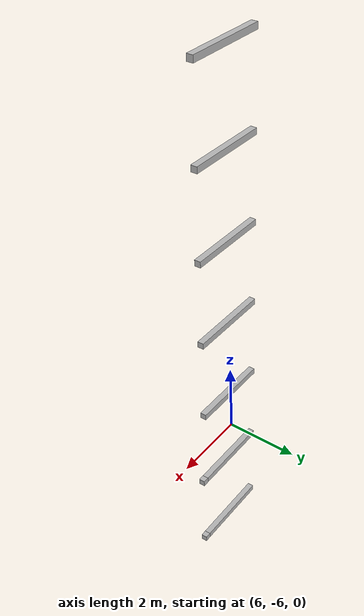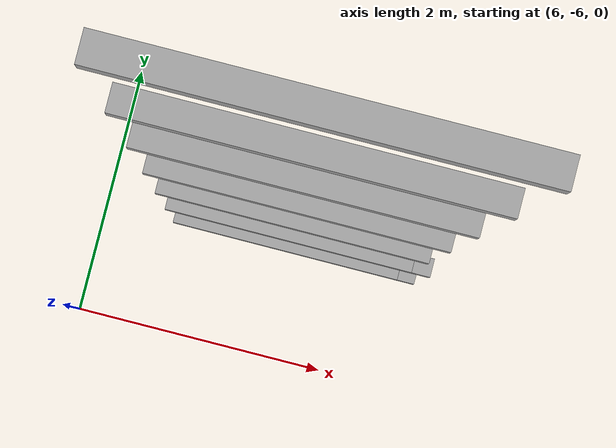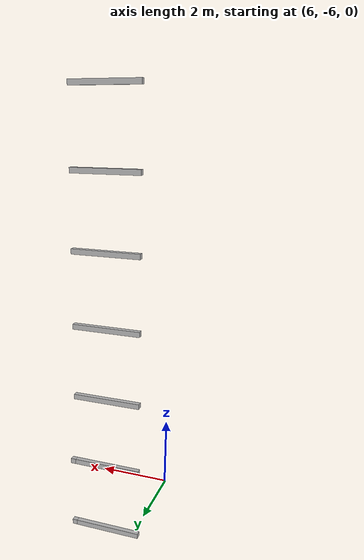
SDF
<sdf version="1.7">
 <world name="default">
  <model name="orthogonal_747_2.000.15_TS">
   <static>1</static>
   <link name="x_link_0_0_6">
    <inertial>
     <mass>1</mass>
     <inertia>
      <ixx>0.166667</ixx>
      <ixy>0</ixy>
      <ixz>0</ixz>
      <iyy>0.166667</iyy>
      <iyz>0</iyz>
      <izz>0.166667</izz>
     </inertia>
    </inertial>
    <pose>13.975 0 1.075 0 -0 0</pose>
    <visual name="visual_0">
     <laser_retro>127</laser_retro>
     <geometry><box><size>2 1e-06 0.15</size></box></geometry>
     <material>
      <script><name>Gazebo/Grey</name><uri>file://media/materials/scripts/gazebo.material</uri></script>
      <shader type="pixel"><normal_map>__default__</normal_map></shader>
      <ambient>0.678 0.498 0.659 1</ambient>
      <diffuse>0.7 0.7 0.7 1</diffuse>
      <specular>0.01 0.01 0.01 1</specular>
      <emissive>0 0 0 1</emissive>
     </material>
     <pose>0 -0.075 0 0 -0 0</pose>
     <transparency>1</transparency>
    </visual>
    <visual name="visual_1">
     <laser_retro>128</laser_retro>
     <geometry><box><size>2 1e-06 0.15</size></box></geometry>
     <material>
      <script><name>Gazebo/Grey</name><uri>file://media/materials/scripts/gazebo.material</uri></script>
      <shader type="pixel"><normal_map>__default__</normal_map></shader>
      <ambient>0.447 0.624 0.812 1</ambient>
      <diffuse>0.7 0.7 0.7 1</diffuse>
      <specular>0.01 0.01 0.01 1</specular>
      <emissive>0 0 0 1</emissive>
     </material>
     <pose>0 0.075 0 0 -0 0</pose>
     <transparency>1</transparency>
    </visual>
    <visual name="visual_2">
     <laser_retro>129</laser_retro>
     <geometry><box><size>2 0.15 1e-06</size></box></geometry>
     <material>
      <script><name>Gazebo/Grey</name><uri>file://media/materials/scripts/gazebo.material</uri></script>
      <shader type="pixel"><normal_map>__default__</normal_map></shader>
      <ambient>0.988 0.686 0.243 1</ambient>
      <diffuse>0.7 0.7 0.7 1</diffuse>
      <specular>0.01 0.01 0.01 1</specular>
      <emissive>0 0 0 1</emissive>
     </material>
     <pose>0 0 -0.075 0 -0 0</pose>
     <transparency>1</transparency>
    </visual>
    <visual name="visual_3">
     <laser_retro>130</laser_retro>
     <geometry><box><size>1e-06 0.15 0.15</size></box></geometry>
     <material>
      <script><name>Gazebo/Grey</name><uri>file://media/materials/scripts/gazebo.material</uri></script>
      <shader type="pixel"><normal_map>__default__</normal_map></shader>
      <ambient>0.988 0.914 0.31 1</ambient>
      <diffuse>0.7 0.7 0.7 1</diffuse>
      <specular>0.01 0.01 0.01 1</specular>
      <emissive>0 0 0 1</emissive>
     </material>
     <pose>1 0 0 0 -0 0</pose>
     <transparency>1</transparency>
    </visual>
    <visual name="visual_4">
     <laser_retro>131</laser_retro>
     <geometry><box><size>2 0.15 1e-06</size></box></geometry>
     <material>
      <script><name>Gazebo/Grey</name><uri>file://media/materials/scripts/gazebo.material</uri></script>
      <shader type="pixel"><normal_map>__default__</normal_map></shader>
      <ambient>0.937 0.161 0.161 1</ambient>
      <diffuse>0.7 0.7 0.7 1</diffuse>
      <specular>0.01 0.01 0.01 1</specular>
      <emissive>0 0 0 1</emissive>
     </material>
     <pose>0 0 0.075 0 -0 0</pose>
     <transparency>1</transparency>
    </visual>
    <visual name="visual_5">
     <laser_retro>132</laser_retro>
     <geometry><box><size>1e-06 0.15 0.15</size></box></geometry>
     <material>
      <script><name>Gazebo/Grey</name><uri>file://media/materials/scripts/gazebo.material</uri></script>
      <shader type="pixel"><normal_map>__default__</normal_map></shader>
      <ambient>0.541 0.886 0.204 1</ambient>
      <diffuse>0.7 0.7 0.7 1</diffuse>
      <specular>0.01 0.01 0.01 1</specular>
      <emissive>0 0 0 1</emissive>
     </material>
     <pose>-1 0 0 0 -0 0</pose>
     <transparency>1</transparency>
    </visual>
    <visual name="visual_texture">
     <geometry><box><size>1.9998 0.149985 0.149985</size></box></geometry>
     <material>
      <script>
       <uri>model://BASE_MODELS/simple_block_v2_textured/materials/scripts</uri>
       <uri>model://BASE_MODELS/simple_block_v2_textured/materials/textures</uri>
       <name>metal</name>
      </script>
     </material>
     <laser_retro>133</laser_retro>
    </visual>
    <collision name="collision">
     <geometry><box><size>2 0.15 0.15</size></box></geometry>
     <surface>
      <friction>
       <ode><mu>1</mu><mu2>1</mu2><fdir1>0 0 0</fdir1><slip1>0</slip1><slip2>0</slip2></ode>
       <torsional>
        <coefficient>1</coefficient>
        <patch_radius>0</patch_radius>
        <surface_radius>0</surface_radius>
        <use_patch_radius>1</use_patch_radius>
        <ode><slip>0</slip></ode>
       </torsional>
      </friction>
      <bounce><restitution_coefficient>0</restitution_coefficient><threshold>1e+06</threshold></bounce>
      <contact>
       <collide_without_contact>0</collide_without_contact>
       <collide_without_contact_bitmask>1</collide_without_contact_bitmask>
       <collide_bitmask>1</collide_bitmask>
       <ode>
        <soft_cfm>0</soft_cfm>
        <soft_erp>0.2</soft_erp>
        <kp>1e+13</kp>
        <kd>1</kd>
        <max_vel>0.01</max_vel>
        <min_depth>0</min_depth>
       </ode>
       <bullet>
        <split_impulse>1</split_impulse>
        <split_impulse_penetration_threshold>-0.01</split_impulse_penetration_threshold>
        <soft_cfm>0</soft_cfm>
        <soft_erp>0.2</soft_erp>
        <kp>1e+13</kp>
        <kd>1</kd>
       </bullet>
      </contact>
     </surface>
    </collision>
   </link>
   <link name="u_link_0_0_7">
    <inertial>
     <mass>1</mass>
     <inertia>
      <ixx>0.166667</ixx>
      <ixy>0</ixy>
      <ixz>0</ixz>
      <iyy>0.166667</iyy>
      <iyz>0</iyz>
      <izz>0.166667</izz>
     </inertia>
    </inertial>
    <pose>15.05 0 1.075 0 -0 0</pose>
    <visual name="visual_0">
     <laser_retro>155</laser_retro>
     <geometry><box><size>0.15 1e-06 0.15</size></box></geometry>
     <material>
      <script><name>Gazebo/Grey</name><uri>file://media/materials/scripts/gazebo.material</uri></script>
      <shader type="pixel"><normal_map>__default__</normal_map></shader>
      <ambient>0.678 0.498 0.659 1</ambient>
      <diffuse>0.7 0.7 0.7 1</diffuse>
      <specular>0.01 0.01 0.01 1</specular>
      <emissive>0 0 0 1</emissive>
     </material>
     <pose>0 -0.075 0 0 -0 0</pose>
     <transparency>1</transparency>
    </visual>
    <visual name="visual_1">
     <laser_retro>156</laser_retro>
     <geometry><box><size>0.15 1e-06 0.15</size></box></geometry>
     <material>
      <script><name>Gazebo/Grey</name><uri>file://media/materials/scripts/gazebo.material</uri></script>
      <shader type="pixel"><normal_map>__default__</normal_map></shader>
      <ambient>0.447 0.624 0.812 1</ambient>
      <diffuse>0.7 0.7 0.7 1</diffuse>
      <specular>0.01 0.01 0.01 1</specular>
      <emissive>0 0 0 1</emissive>
     </material>
     <pose>0 0.075 0 0 -0 0</pose>
     <transparency>1</transparency>
    </visual>
    <visual name="visual_2">
     <laser_retro>157</laser_retro>
     <geometry><box><size>0.15 0.15 1e-06</size></box></geometry>
     <material>
      <script><name>Gazebo/Grey</name><uri>file://media/materials/scripts/gazebo.material</uri></script>
      <shader type="pixel"><normal_map>__default__</normal_map></shader>
      <ambient>0.988 0.686 0.243 1</ambient>
      <diffuse>0.7 0.7 0.7 1</diffuse>
      <specular>0.01 0.01 0.01 1</specular>
      <emissive>0 0 0 1</emissive>
     </material>
     <pose>0 0 -0.075 0 -0 0</pose>
     <transparency>1</transparency>
    </visual>
    <visual name="visual_3">
     <laser_retro>158</laser_retro>
     <geometry><box><size>1e-06 0.15 0.15</size></box></geometry>
     <material>
      <script><name>Gazebo/Grey</name><uri>file://media/materials/scripts/gazebo.material</uri></script>
      <shader type="pixel"><normal_map>__default__</normal_map></shader>
      <ambient>0.988 0.914 0.31 1</ambient>
      <diffuse>0.7 0.7 0.7 1</diffuse>
      <specular>0.01 0.01 0.01 1</specular>
      <emissive>0 0 0 1</emissive>
     </material>
     <pose>0.075 0 0 0 -0 0</pose>
     <transparency>1</transparency>
    </visual>
    <visual name="visual_4">
     <laser_retro>159</laser_retro>
     <geometry><box><size>0.15 0.15 1e-06</size></box></geometry>
     <material>
      <script><name>Gazebo/Grey</name><uri>file://media/materials/scripts/gazebo.material</uri></script>
      <shader type="pixel"><normal_map>__default__</normal_map></shader>
      <ambient>0.937 0.161 0.161 1</ambient>
      <diffuse>0.7 0.7 0.7 1</diffuse>
      <specular>0.01 0.01 0.01 1</specular>
      <emissive>0 0 0 1</emissive>
     </material>
     <pose>0 0 0.075 0 -0 0</pose>
     <transparency>1</transparency>
    </visual>
    <visual name="visual_5">
     <laser_retro>160</laser_retro>
     <geometry><box><size>1e-06 0.15 0.15</size></box></geometry>
     <material>
      <script><name>Gazebo/Grey</name><uri>file://media/materials/scripts/gazebo.material</uri></script>
      <shader type="pixel"><normal_map>__default__</normal_map></shader>
      <ambient>0.541 0.886 0.204 1</ambient>
      <diffuse>0.7 0.7 0.7 1</diffuse>
      <specular>0.01 0.01 0.01 1</specular>
      <emissive>0 0 0 1</emissive>
     </material>
     <pose>-0.075 0 0 0 -0 0</pose>
     <transparency>1</transparency>
    </visual>
    <visual name="visual_texture">
     <geometry><box><size>0.149985 0.149985 0.149985</size></box></geometry>
     <material>
      <script>
       <uri>model://BASE_MODELS/simple_block_v2_textured/materials/scripts</uri>
       <uri>model://BASE_MODELS/simple_block_v2_textured/materials/textures</uri>
       <name>metal</name>
      </script>
     </material>
     <laser_retro>161</laser_retro>
    </visual>
    <collision name="collision">
     <geometry><box><size>0.15 0.15 0.15</size></box></geometry>
     <surface>
      <friction>
       <ode><mu>1</mu><mu2>1</mu2><fdir1>0 0 0</fdir1><slip1>0</slip1><slip2>0</slip2></ode>
       <torsional>
        <coefficient>1</coefficient>
        <patch_radius>0</patch_radius>
        <surface_radius>0</surface_radius>
        <use_patch_radius>1</use_patch_radius>
        <ode><slip>0</slip></ode>
       </torsional>
      </friction>
      <bounce><restitution_coefficient>0</restitution_coefficient><threshold>1e+06</threshold></bounce>
      <contact>
       <collide_without_contact>0</collide_without_contact>
       <collide_without_contact_bitmask>1</collide_without_contact_bitmask>
       <collide_bitmask>1</collide_bitmask>
       <ode>
        <soft_cfm>0</soft_cfm>
        <soft_erp>0.2</soft_erp>
        <kp>1e+13</kp>
        <kd>1</kd>
        <max_vel>0.01</max_vel>
        <min_depth>0</min_depth>
       </ode>
       <bullet>
        <split_impulse>1</split_impulse>
        <split_impulse_penetration_threshold>-0.01</split_impulse_penetration_threshold>
        <soft_cfm>0</soft_cfm>
        <soft_erp>0.2</soft_erp>
        <kp>1e+13</kp>
        <kd>1</kd>
       </bullet>
      </contact>
     </surface>
    </collision>
   </link>
   <link name="x_link_1_0_6">
    <inertial>
     <mass>1</mass>
     <inertia>
      <ixx>0.166667</ixx>
      <ixy>0</ixy>
      <ixz>0</ixz>
      <iyy>0.166667</iyy>
      <iyz>0</iyz>
      <izz>0.166667</izz>
     </inertia>
    </inertial>
    <pose>13.975 0 3.225 0 -0 0</pose>
    <visual name="visual_0">
     <laser_retro>918</laser_retro>
     <geometry><box><size>2 1e-06 0.15</size></box></geometry>
     <material>
      <script><name>Gazebo/Grey</name><uri>file://media/materials/scripts/gazebo.material</uri></script>
      <shader type="pixel"><normal_map>__default__</normal_map></shader>
      <ambient>0.678 0.498 0.659 1</ambient>
      <diffuse>0.7 0.7 0.7 1</diffuse>
      <specular>0.01 0.01 0.01 1</specular>
      <emissive>0 0 0 1</emissive>
     </material>
     <pose>0 -0.075 0 0 -0 0</pose>
     <transparency>1</transparency>
    </visual>
    <visual name="visual_1">
     <laser_retro>919</laser_retro>
     <geometry><box><size>2 1e-06 0.15</size></box></geometry>
     <material>
      <script><name>Gazebo/Grey</name><uri>file://media/materials/scripts/gazebo.material</uri></script>
      <shader type="pixel"><normal_map>__default__</normal_map></shader>
      <ambient>0.447 0.624 0.812 1</ambient>
      <diffuse>0.7 0.7 0.7 1</diffuse>
      <specular>0.01 0.01 0.01 1</specular>
      <emissive>0 0 0 1</emissive>
     </material>
     <pose>0 0.075 0 0 -0 0</pose>
     <transparency>1</transparency>
    </visual>
    <visual name="visual_2">
     <laser_retro>920</laser_retro>
     <geometry><box><size>2 0.15 1e-06</size></box></geometry>
     <material>
      <script><name>Gazebo/Grey</name><uri>file://media/materials/scripts/gazebo.material</uri></script>
      <shader type="pixel"><normal_map>__default__</normal_map></shader>
      <ambient>0.988 0.686 0.243 1</ambient>
      <diffuse>0.7 0.7 0.7 1</diffuse>
      <specular>0.01 0.01 0.01 1</specular>
      <emissive>0 0 0 1</emissive>
     </material>
     <pose>0 0 -0.075 0 -0 0</pose>
     <transparency>1</transparency>
    </visual>
    <visual name="visual_3">
     <laser_retro>921</laser_retro>
     <geometry><box><size>1e-06 0.15 0.15</size></box></geometry>
     <material>
      <script><name>Gazebo/Grey</name><uri>file://media/materials/scripts/gazebo.material</uri></script>
      <shader type="pixel"><normal_map>__default__</normal_map></shader>
      <ambient>0.988 0.914 0.31 1</ambient>
      <diffuse>0.7 0.7 0.7 1</diffuse>
      <specular>0.01 0.01 0.01 1</specular>
      <emissive>0 0 0 1</emissive>
     </material>
     <pose>1 0 0 0 -0 0</pose>
     <transparency>1</transparency>
    </visual>
    <visual name="visual_4">
     <laser_retro>922</laser_retro>
     <geometry><box><size>2 0.15 1e-06</size></box></geometry>
     <material>
      <script><name>Gazebo/Grey</name><uri>file://media/materials/scripts/gazebo.material</uri></script>
      <shader type="pixel"><normal_map>__default__</normal_map></shader>
      <ambient>0.937 0.161 0.161 1</ambient>
      <diffuse>0.7 0.7 0.7 1</diffuse>
      <specular>0.01 0.01 0.01 1</specular>
      <emissive>0 0 0 1</emissive>
     </material>
     <pose>0 0 0.075 0 -0 0</pose>
     <transparency>1</transparency>
    </visual>
    <visual name="visual_5">
     <laser_retro>923</laser_retro>
     <geometry><box><size>1e-06 0.15 0.15</size></box></geometry>
     <material>
      <script><name>Gazebo/Grey</name><uri>file://media/materials/scripts/gazebo.material</uri></script>
      <shader type="pixel"><normal_map>__default__</normal_map></shader>
      <ambient>0.541 0.886 0.204 1</ambient>
      <diffuse>0.7 0.7 0.7 1</diffuse>
      <specular>0.01 0.01 0.01 1</specular>
      <emissive>0 0 0 1</emissive>
     </material>
     <pose>-1 0 0 0 -0 0</pose>
     <transparency>1</transparency>
    </visual>
    <visual name="visual_texture">
     <geometry><box><size>1.9998 0.149985 0.149985</size></box></geometry>
     <material>
      <script>
       <uri>model://BASE_MODELS/simple_block_v2_textured/materials/scripts</uri>
       <uri>model://BASE_MODELS/simple_block_v2_textured/materials/textures</uri>
       <name>metal</name>
      </script>
     </material>
     <laser_retro>924</laser_retro>
    </visual>
    <collision name="collision">
     <geometry><box><size>2 0.15 0.15</size></box></geometry>
     <surface>
      <friction>
       <ode><mu>1</mu><mu2>1</mu2><fdir1>0 0 0</fdir1><slip1>0</slip1><slip2>0</slip2></ode>
       <torsional>
        <coefficient>1</coefficient>
        <patch_radius>0</patch_radius>
        <surface_radius>0</surface_radius>
        <use_patch_radius>1</use_patch_radius>
        <ode><slip>0</slip></ode>
       </torsional>
      </friction>
      <bounce><restitution_coefficient>0</restitution_coefficient><threshold>1e+06</threshold></bounce>
      <contact>
       <collide_without_contact>0</collide_without_contact>
       <collide_without_contact_bitmask>1</collide_without_contact_bitmask>
       <collide_bitmask>1</collide_bitmask>
       <ode>
        <soft_cfm>0</soft_cfm>
        <soft_erp>0.2</soft_erp>
        <kp>1e+13</kp>
        <kd>1</kd>
        <max_vel>0.01</max_vel>
        <min_depth>0</min_depth>
       </ode>
       <bullet>
        <split_impulse>1</split_impulse>
        <split_impulse_penetration_threshold>-0.01</split_impulse_penetration_threshold>
        <soft_cfm>0</soft_cfm>
        <soft_erp>0.2</soft_erp>
        <kp>1e+13</kp>
        <kd>1</kd>
       </bullet>
      </contact>
     </surface>
    </collision>
   </link>
   <link name="u_link_1_0_7">
    <inertial>
     <mass>1</mass>
     <inertia>
      <ixx>0.166667</ixx>
      <ixy>0</ixy>
      <ixz>0</ixz>
      <iyy>0.166667</iyy>
      <iyz>0</iyz>
      <izz>0.166667</izz>
     </inertia>
    </inertial>
    <pose>15.05 0 3.225 0 -0 0</pose>
    <visual name="visual_0">
     <laser_retro>953</laser_retro>
     <geometry><box><size>0.15 1e-06 0.15</size></box></geometry>
     <material>
      <script><name>Gazebo/Grey</name><uri>file://media/materials/scripts/gazebo.material</uri></script>
      <shader type="pixel"><normal_map>__default__</normal_map></shader>
      <ambient>0.678 0.498 0.659 1</ambient>
      <diffuse>0.7 0.7 0.7 1</diffuse>
      <specular>0.01 0.01 0.01 1</specular>
      <emissive>0 0 0 1</emissive>
     </material>
     <pose>0 -0.075 0 0 -0 0</pose>
     <transparency>1</transparency>
    </visual>
    <visual name="visual_1">
     <laser_retro>954</laser_retro>
     <geometry><box><size>0.15 1e-06 0.15</size></box></geometry>
     <material>
      <script><name>Gazebo/Grey</name><uri>file://media/materials/scripts/gazebo.material</uri></script>
      <shader type="pixel"><normal_map>__default__</normal_map></shader>
      <ambient>0.447 0.624 0.812 1</ambient>
      <diffuse>0.7 0.7 0.7 1</diffuse>
      <specular>0.01 0.01 0.01 1</specular>
      <emissive>0 0 0 1</emissive>
     </material>
     <pose>0 0.075 0 0 -0 0</pose>
     <transparency>1</transparency>
    </visual>
    <visual name="visual_2">
     <laser_retro>955</laser_retro>
     <geometry><box><size>0.15 0.15 1e-06</size></box></geometry>
     <material>
      <script><name>Gazebo/Grey</name><uri>file://media/materials/scripts/gazebo.material</uri></script>
      <shader type="pixel"><normal_map>__default__</normal_map></shader>
      <ambient>0.988 0.686 0.243 1</ambient>
      <diffuse>0.7 0.7 0.7 1</diffuse>
      <specular>0.01 0.01 0.01 1</specular>
      <emissive>0 0 0 1</emissive>
     </material>
     <pose>0 0 -0.075 0 -0 0</pose>
     <transparency>1</transparency>
    </visual>
    <visual name="visual_3">
     <laser_retro>956</laser_retro>
     <geometry><box><size>1e-06 0.15 0.15</size></box></geometry>
     <material>
      <script><name>Gazebo/Grey</name><uri>file://media/materials/scripts/gazebo.material</uri></script>
      <shader type="pixel"><normal_map>__default__</normal_map></shader>
      <ambient>0.988 0.914 0.31 1</ambient>
      <diffuse>0.7 0.7 0.7 1</diffuse>
      <specular>0.01 0.01 0.01 1</specular>
      <emissive>0 0 0 1</emissive>
     </material>
     <pose>0.075 0 0 0 -0 0</pose>
     <transparency>1</transparency>
    </visual>
    <visual name="visual_4">
     <laser_retro>957</laser_retro>
     <geometry><box><size>0.15 0.15 1e-06</size></box></geometry>
     <material>
      <script><name>Gazebo/Grey</name><uri>file://media/materials/scripts/gazebo.material</uri></script>
      <shader type="pixel"><normal_map>__default__</normal_map></shader>
      <ambient>0.937 0.161 0.161 1</ambient>
      <diffuse>0.7 0.7 0.7 1</diffuse>
      <specular>0.01 0.01 0.01 1</specular>
      <emissive>0 0 0 1</emissive>
     </material>
     <pose>0 0 0.075 0 -0 0</pose>
     <transparency>1</transparency>
    </visual>
    <visual name="visual_5">
     <laser_retro>958</laser_retro>
     <geometry><box><size>1e-06 0.15 0.15</size></box></geometry>
     <material>
      <script><name>Gazebo/Grey</name><uri>file://media/materials/scripts/gazebo.material</uri></script>
      <shader type="pixel"><normal_map>__default__</normal_map></shader>
      <ambient>0.541 0.886 0.204 1</ambient>
      <diffuse>0.7 0.7 0.7 1</diffuse>
      <specular>0.01 0.01 0.01 1</specular>
      <emissive>0 0 0 1</emissive>
     </material>
     <pose>-0.075 0 0 0 -0 0</pose>
     <transparency>1</transparency>
    </visual>
    <visual name="visual_texture">
     <geometry><box><size>0.149985 0.149985 0.149985</size></box></geometry>
     <material>
      <script>
       <uri>model://BASE_MODELS/simple_block_v2_textured/materials/scripts</uri>
       <uri>model://BASE_MODELS/simple_block_v2_textured/materials/textures</uri>
       <name>metal</name>
      </script>
     </material>
     <laser_retro>959</laser_retro>
    </visual>
    <collision name="collision">
     <geometry><box><size>0.15 0.15 0.15</size></box></geometry>
     <surface>
      <friction>
       <ode><mu>1</mu><mu2>1</mu2><fdir1>0 0 0</fdir1><slip1>0</slip1><slip2>0</slip2></ode>
       <torsional>
        <coefficient>1</coefficient>
        <patch_radius>0</patch_radius>
        <surface_radius>0</surface_radius>
        <use_patch_radius>1</use_patch_radius>
        <ode><slip>0</slip></ode>
       </torsional>
      </friction>
      <bounce><restitution_coefficient>0</restitution_coefficient><threshold>1e+06</threshold></bounce>
      <contact>
       <collide_without_contact>0</collide_without_contact>
       <collide_without_contact_bitmask>1</collide_without_contact_bitmask>
       <collide_bitmask>1</collide_bitmask>
       <ode>
        <soft_cfm>0</soft_cfm>
        <soft_erp>0.2</soft_erp>
        <kp>1e+13</kp>
        <kd>1</kd>
        <max_vel>0.01</max_vel>
        <min_depth>0</min_depth>
       </ode>
       <bullet>
        <split_impulse>1</split_impulse>
        <split_impulse_penetration_threshold>-0.01</split_impulse_penetration_threshold>
        <soft_cfm>0</soft_cfm>
        <soft_erp>0.2</soft_erp>
        <kp>1e+13</kp>
        <kd>1</kd>
       </bullet>
      </contact>
     </surface>
    </collision>
   </link>
   <link name="x_link_2_0_6">
    <inertial>
     <mass>1</mass>
     <inertia>
      <ixx>0.166667</ixx>
      <ixy>0</ixy>
      <ixz>0</ixz>
      <iyy>0.166667</iyy>
      <iyz>0</iyz>
      <izz>0.166667</izz>
     </inertia>
    </inertial>
    <pose>13.975 0 5.375 0 -0 0</pose>
    <visual name="visual_0">
     <laser_retro>1821</laser_retro>
     <geometry><box><size>2 1e-06 0.15</size></box></geometry>
     <material>
      <script><name>Gazebo/Grey</name><uri>file://media/materials/scripts/gazebo.material</uri></script>
      <shader type="pixel"><normal_map>__default__</normal_map></shader>
      <ambient>0.678 0.498 0.659 1</ambient>
      <diffuse>0.7 0.7 0.7 1</diffuse>
      <specular>0.01 0.01 0.01 1</specular>
      <emissive>0 0 0 1</emissive>
     </material>
     <pose>0 -0.075 0 0 -0 0</pose>
     <transparency>1</transparency>
    </visual>
    <visual name="visual_1">
     <laser_retro>1822</laser_retro>
     <geometry><box><size>2 1e-06 0.15</size></box></geometry>
     <material>
      <script><name>Gazebo/Grey</name><uri>file://media/materials/scripts/gazebo.material</uri></script>
      <shader type="pixel"><normal_map>__default__</normal_map></shader>
      <ambient>0.447 0.624 0.812 1</ambient>
      <diffuse>0.7 0.7 0.7 1</diffuse>
      <specular>0.01 0.01 0.01 1</specular>
      <emissive>0 0 0 1</emissive>
     </material>
     <pose>0 0.075 0 0 -0 0</pose>
     <transparency>1</transparency>
    </visual>
    <visual name="visual_2">
     <laser_retro>1823</laser_retro>
     <geometry><box><size>2 0.15 1e-06</size></box></geometry>
     <material>
      <script><name>Gazebo/Grey</name><uri>file://media/materials/scripts/gazebo.material</uri></script>
      <shader type="pixel"><normal_map>__default__</normal_map></shader>
      <ambient>0.988 0.686 0.243 1</ambient>
      <diffuse>0.7 0.7 0.7 1</diffuse>
      <specular>0.01 0.01 0.01 1</specular>
      <emissive>0 0 0 1</emissive>
     </material>
     <pose>0 0 -0.075 0 -0 0</pose>
     <transparency>1</transparency>
    </visual>
    <visual name="visual_3">
     <laser_retro>1824</laser_retro>
     <geometry><box><size>1e-06 0.15 0.15</size></box></geometry>
     <material>
      <script><name>Gazebo/Grey</name><uri>file://media/materials/scripts/gazebo.material</uri></script>
      <shader type="pixel"><normal_map>__default__</normal_map></shader>
      <ambient>0.988 0.914 0.31 1</ambient>
      <diffuse>0.7 0.7 0.7 1</diffuse>
      <specular>0.01 0.01 0.01 1</specular>
      <emissive>0 0 0 1</emissive>
     </material>
     <pose>1 0 0 0 -0 0</pose>
     <transparency>1</transparency>
    </visual>
    <visual name="visual_4">
     <laser_retro>1825</laser_retro>
     <geometry><box><size>2 0.15 1e-06</size></box></geometry>
     <material>
      <script><name>Gazebo/Grey</name><uri>file://media/materials/scripts/gazebo.material</uri></script>
      <shader type="pixel"><normal_map>__default__</normal_map></shader>
      <ambient>0.937 0.161 0.161 1</ambient>
      <diffuse>0.7 0.7 0.7 1</diffuse>
      <specular>0.01 0.01 0.01 1</specular>
      <emissive>0 0 0 1</emissive>
     </material>
     <pose>0 0 0.075 0 -0 0</pose>
     <transparency>1</transparency>
    </visual>
    <visual name="visual_5">
     <laser_retro>1826</laser_retro>
     <geometry><box><size>1e-06 0.15 0.15</size></box></geometry>
     <material>
      <script><name>Gazebo/Grey</name><uri>file://media/materials/scripts/gazebo.material</uri></script>
      <shader type="pixel"><normal_map>__default__</normal_map></shader>
      <ambient>0.541 0.886 0.204 1</ambient>
      <diffuse>0.7 0.7 0.7 1</diffuse>
      <specular>0.01 0.01 0.01 1</specular>
      <emissive>0 0 0 1</emissive>
     </material>
     <pose>-1 0 0 0 -0 0</pose>
     <transparency>1</transparency>
    </visual>
    <visual name="visual_texture">
     <geometry><box><size>1.9998 0.149985 0.149985</size></box></geometry>
     <material>
      <script>
       <uri>model://BASE_MODELS/simple_block_v2_textured/materials/scripts</uri>
       <uri>model://BASE_MODELS/simple_block_v2_textured/materials/textures</uri>
       <name>metal</name>
      </script>
     </material>
     <laser_retro>1827</laser_retro>
    </visual>
    <collision name="collision">
     <geometry><box><size>2 0.15 0.15</size></box></geometry>
     <surface>
      <friction>
       <ode><mu>1</mu><mu2>1</mu2><fdir1>0 0 0</fdir1><slip1>0</slip1><slip2>0</slip2></ode>
       <torsional>
        <coefficient>1</coefficient>
        <patch_radius>0</patch_radius>
        <surface_radius>0</surface_radius>
        <use_patch_radius>1</use_patch_radius>
        <ode><slip>0</slip></ode>
       </torsional>
      </friction>
      <bounce><restitution_coefficient>0</restitution_coefficient><threshold>1e+06</threshold></bounce>
      <contact>
       <collide_without_contact>0</collide_without_contact>
       <collide_without_contact_bitmask>1</collide_without_contact_bitmask>
       <collide_bitmask>1</collide_bitmask>
       <ode>
        <soft_cfm>0</soft_cfm>
        <soft_erp>0.2</soft_erp>
        <kp>1e+13</kp>
        <kd>1</kd>
        <max_vel>0.01</max_vel>
        <min_depth>0</min_depth>
       </ode>
       <bullet>
        <split_impulse>1</split_impulse>
        <split_impulse_penetration_threshold>-0.01</split_impulse_penetration_threshold>
        <soft_cfm>0</soft_cfm>
        <soft_erp>0.2</soft_erp>
        <kp>1e+13</kp>
        <kd>1</kd>
       </bullet>
      </contact>
     </surface>
    </collision>
   </link>
   <link name="x_link_3_0_6">
    <inertial>
     <mass>1</mass>
     <inertia>
      <ixx>0.166667</ixx>
      <ixy>0</ixy>
      <ixz>0</ixz>
      <iyy>0.166667</iyy>
      <iyz>0</iyz>
      <izz>0.166667</izz>
     </inertia>
    </inertial>
    <pose>13.975 0 7.525 0 -0 0</pose>
    <visual name="visual_0">
     <laser_retro>2724</laser_retro>
     <geometry><box><size>2 1e-06 0.15</size></box></geometry>
     <material>
      <script><name>Gazebo/Grey</name><uri>file://media/materials/scripts/gazebo.material</uri></script>
      <shader type="pixel"><normal_map>__default__</normal_map></shader>
      <ambient>0.678 0.498 0.659 1</ambient>
      <diffuse>0.7 0.7 0.7 1</diffuse>
      <specular>0.01 0.01 0.01 1</specular>
      <emissive>0 0 0 1</emissive>
     </material>
     <pose>0 -0.075 0 0 -0 0</pose>
     <transparency>1</transparency>
    </visual>
    <visual name="visual_1">
     <laser_retro>2725</laser_retro>
     <geometry><box><size>2 1e-06 0.15</size></box></geometry>
     <material>
      <script><name>Gazebo/Grey</name><uri>file://media/materials/scripts/gazebo.material</uri></script>
      <shader type="pixel"><normal_map>__default__</normal_map></shader>
      <ambient>0.447 0.624 0.812 1</ambient>
      <diffuse>0.7 0.7 0.7 1</diffuse>
      <specular>0.01 0.01 0.01 1</specular>
      <emissive>0 0 0 1</emissive>
     </material>
     <pose>0 0.075 0 0 -0 0</pose>
     <transparency>1</transparency>
    </visual>
    <visual name="visual_2">
     <laser_retro>2726</laser_retro>
     <geometry><box><size>2 0.15 1e-06</size></box></geometry>
     <material>
      <script><name>Gazebo/Grey</name><uri>file://media/materials/scripts/gazebo.material</uri></script>
      <shader type="pixel"><normal_map>__default__</normal_map></shader>
      <ambient>0.988 0.686 0.243 1</ambient>
      <diffuse>0.7 0.7 0.7 1</diffuse>
      <specular>0.01 0.01 0.01 1</specular>
      <emissive>0 0 0 1</emissive>
     </material>
     <pose>0 0 -0.075 0 -0 0</pose>
     <transparency>1</transparency>
    </visual>
    <visual name="visual_3">
     <laser_retro>2727</laser_retro>
     <geometry><box><size>1e-06 0.15 0.15</size></box></geometry>
     <material>
      <script><name>Gazebo/Grey</name><uri>file://media/materials/scripts/gazebo.material</uri></script>
      <shader type="pixel"><normal_map>__default__</normal_map></shader>
      <ambient>0.988 0.914 0.31 1</ambient>
      <diffuse>0.7 0.7 0.7 1</diffuse>
      <specular>0.01 0.01 0.01 1</specular>
      <emissive>0 0 0 1</emissive>
     </material>
     <pose>1 0 0 0 -0 0</pose>
     <transparency>1</transparency>
    </visual>
    <visual name="visual_4">
     <laser_retro>2728</laser_retro>
     <geometry><box><size>2 0.15 1e-06</size></box></geometry>
     <material>
      <script><name>Gazebo/Grey</name><uri>file://media/materials/scripts/gazebo.material</uri></script>
      <shader type="pixel"><normal_map>__default__</normal_map></shader>
      <ambient>0.937 0.161 0.161 1</ambient>
      <diffuse>0.7 0.7 0.7 1</diffuse>
      <specular>0.01 0.01 0.01 1</specular>
      <emissive>0 0 0 1</emissive>
     </material>
     <pose>0 0 0.075 0 -0 0</pose>
     <transparency>1</transparency>
    </visual>
    <visual name="visual_5">
     <laser_retro>2729</laser_retro>
     <geometry><box><size>1e-06 0.15 0.15</size></box></geometry>
     <material>
      <script><name>Gazebo/Grey</name><uri>file://media/materials/scripts/gazebo.material</uri></script>
      <shader type="pixel"><normal_map>__default__</normal_map></shader>
      <ambient>0.541 0.886 0.204 1</ambient>
      <diffuse>0.7 0.7 0.7 1</diffuse>
      <specular>0.01 0.01 0.01 1</specular>
      <emissive>0 0 0 1</emissive>
     </material>
     <pose>-1 0 0 0 -0 0</pose>
     <transparency>1</transparency>
    </visual>
    <visual name="visual_texture">
     <geometry><box><size>1.9998 0.149985 0.149985</size></box></geometry>
     <material>
      <script>
       <uri>model://BASE_MODELS/simple_block_v2_textured/materials/scripts</uri>
       <uri>model://BASE_MODELS/simple_block_v2_textured/materials/textures</uri>
       <name>metal</name>
      </script>
     </material>
     <laser_retro>2730</laser_retro>
    </visual>
    <collision name="collision">
     <geometry><box><size>2 0.15 0.15</size></box></geometry>
     <surface>
      <friction>
       <ode><mu>1</mu><mu2>1</mu2><fdir1>0 0 0</fdir1><slip1>0</slip1><slip2>0</slip2></ode>
       <torsional>
        <coefficient>1</coefficient>
        <patch_radius>0</patch_radius>
        <surface_radius>0</surface_radius>
        <use_patch_radius>1</use_patch_radius>
        <ode><slip>0</slip></ode>
       </torsional>
      </friction>
      <bounce><restitution_coefficient>0</restitution_coefficient><threshold>1e+06</threshold></bounce>
      <contact>
       <collide_without_contact>0</collide_without_contact>
       <collide_without_contact_bitmask>1</collide_without_contact_bitmask>
       <collide_bitmask>1</collide_bitmask>
       <ode>
        <soft_cfm>0</soft_cfm>
        <soft_erp>0.2</soft_erp>
        <kp>1e+13</kp>
        <kd>1</kd>
        <max_vel>0.01</max_vel>
        <min_depth>0</min_depth>
       </ode>
       <bullet>
        <split_impulse>1</split_impulse>
        <split_impulse_penetration_threshold>-0.01</split_impulse_penetration_threshold>
        <soft_cfm>0</soft_cfm>
        <soft_erp>0.2</soft_erp>
        <kp>1e+13</kp>
        <kd>1</kd>
       </bullet>
      </contact>
     </surface>
    </collision>
   </link>
   <link name="x_link_4_0_6">
    <inertial>
     <mass>1</mass>
     <inertia>
      <ixx>0.166667</ixx>
      <ixy>0</ixy>
      <ixz>0</ixz>
      <iyy>0.166667</iyy>
      <iyz>0</iyz>
      <izz>0.166667</izz>
     </inertia>
    </inertial>
    <pose>13.975 0 9.675 0 -0 0</pose>
    <visual name="visual_0">
     <laser_retro>3627</laser_retro>
     <geometry><box><size>2 1e-06 0.15</size></box></geometry>
     <material>
      <script><name>Gazebo/Grey</name><uri>file://media/materials/scripts/gazebo.material</uri></script>
      <shader type="pixel"><normal_map>__default__</normal_map></shader>
      <ambient>0.678 0.498 0.659 1</ambient>
      <diffuse>0.7 0.7 0.7 1</diffuse>
      <specular>0.01 0.01 0.01 1</specular>
      <emissive>0 0 0 1</emissive>
     </material>
     <pose>0 -0.075 0 0 -0 0</pose>
     <transparency>1</transparency>
    </visual>
    <visual name="visual_1">
     <laser_retro>3628</laser_retro>
     <geometry><box><size>2 1e-06 0.15</size></box></geometry>
     <material>
      <script><name>Gazebo/Grey</name><uri>file://media/materials/scripts/gazebo.material</uri></script>
      <shader type="pixel"><normal_map>__default__</normal_map></shader>
      <ambient>0.447 0.624 0.812 1</ambient>
      <diffuse>0.7 0.7 0.7 1</diffuse>
      <specular>0.01 0.01 0.01 1</specular>
      <emissive>0 0 0 1</emissive>
     </material>
     <pose>0 0.075 0 0 -0 0</pose>
     <transparency>1</transparency>
    </visual>
    <visual name="visual_2">
     <laser_retro>3629</laser_retro>
     <geometry><box><size>2 0.15 1e-06</size></box></geometry>
     <material>
      <script><name>Gazebo/Grey</name><uri>file://media/materials/scripts/gazebo.material</uri></script>
      <shader type="pixel"><normal_map>__default__</normal_map></shader>
      <ambient>0.988 0.686 0.243 1</ambient>
      <diffuse>0.7 0.7 0.7 1</diffuse>
      <specular>0.01 0.01 0.01 1</specular>
      <emissive>0 0 0 1</emissive>
     </material>
     <pose>0 0 -0.075 0 -0 0</pose>
     <transparency>1</transparency>
    </visual>
    <visual name="visual_3">
     <laser_retro>3630</laser_retro>
     <geometry><box><size>1e-06 0.15 0.15</size></box></geometry>
     <material>
      <script><name>Gazebo/Grey</name><uri>file://media/materials/scripts/gazebo.material</uri></script>
      <shader type="pixel"><normal_map>__default__</normal_map></shader>
      <ambient>0.988 0.914 0.31 1</ambient>
      <diffuse>0.7 0.7 0.7 1</diffuse>
      <specular>0.01 0.01 0.01 1</specular>
      <emissive>0 0 0 1</emissive>
     </material>
     <pose>1 0 0 0 -0 0</pose>
     <transparency>1</transparency>
    </visual>
    <visual name="visual_4">
     <laser_retro>3631</laser_retro>
     <geometry><box><size>2 0.15 1e-06</size></box></geometry>
     <material>
      <script><name>Gazebo/Grey</name><uri>file://media/materials/scripts/gazebo.material</uri></script>
      <shader type="pixel"><normal_map>__default__</normal_map></shader>
      <ambient>0.937 0.161 0.161 1</ambient>
      <diffuse>0.7 0.7 0.7 1</diffuse>
      <specular>0.01 0.01 0.01 1</specular>
      <emissive>0 0 0 1</emissive>
     </material>
     <pose>0 0 0.075 0 -0 0</pose>
     <transparency>1</transparency>
    </visual>
    <visual name="visual_5">
     <laser_retro>3632</laser_retro>
     <geometry><box><size>1e-06 0.15 0.15</size></box></geometry>
     <material>
      <script><name>Gazebo/Grey</name><uri>file://media/materials/scripts/gazebo.material</uri></script>
      <shader type="pixel"><normal_map>__default__</normal_map></shader>
      <ambient>0.541 0.886 0.204 1</ambient>
      <diffuse>0.7 0.7 0.7 1</diffuse>
      <specular>0.01 0.01 0.01 1</specular>
      <emissive>0 0 0 1</emissive>
     </material>
     <pose>-1 0 0 0 -0 0</pose>
     <transparency>1</transparency>
    </visual>
    <visual name="visual_texture">
     <geometry><box><size>1.9998 0.149985 0.149985</size></box></geometry>
     <material>
      <script>
       <uri>model://BASE_MODELS/simple_block_v2_textured/materials/scripts</uri>
       <uri>model://BASE_MODELS/simple_block_v2_textured/materials/textures</uri>
       <name>metal</name>
      </script>
     </material>
     <laser_retro>3633</laser_retro>
    </visual>
    <collision name="collision">
     <geometry><box><size>2 0.15 0.15</size></box></geometry>
     <surface>
      <friction>
       <ode><mu>1</mu><mu2>1</mu2><fdir1>0 0 0</fdir1><slip1>0</slip1><slip2>0</slip2></ode>
       <torsional>
        <coefficient>1</coefficient>
        <patch_radius>0</patch_radius>
        <surface_radius>0</surface_radius>
        <use_patch_radius>1</use_patch_radius>
        <ode><slip>0</slip></ode>
       </torsional>
      </friction>
      <bounce><restitution_coefficient>0</restitution_coefficient><threshold>1e+06</threshold></bounce>
      <contact>
       <collide_without_contact>0</collide_without_contact>
       <collide_without_contact_bitmask>1</collide_without_contact_bitmask>
       <collide_bitmask>1</collide_bitmask>
       <ode>
        <soft_cfm>0</soft_cfm>
        <soft_erp>0.2</soft_erp>
        <kp>1e+13</kp>
        <kd>1</kd>
        <max_vel>0.01</max_vel>
        <min_depth>0</min_depth>
       </ode>
       <bullet>
        <split_impulse>1</split_impulse>
        <split_impulse_penetration_threshold>-0.01</split_impulse_penetration_threshold>
        <soft_cfm>0</soft_cfm>
        <soft_erp>0.2</soft_erp>
        <kp>1e+13</kp>
        <kd>1</kd>
       </bullet>
      </contact>
     </surface>
    </collision>
   </link>
   <link name="x_link_5_0_6">
    <inertial>
     <mass>1</mass>
     <inertia>
      <ixx>0.166667</ixx>
      <ixy>0</ixy>
      <ixz>0</ixz>
      <iyy>0.166667</iyy>
      <iyz>0</iyz>
      <izz>0.166667</izz>
     </inertia>
    </inertial>
    <pose>13.975 0 11.825 0 -0 0</pose>
    <visual name="visual_0">
     <laser_retro>4530</laser_retro>
     <geometry><box><size>2 1e-06 0.15</size></box></geometry>
     <material>
      <script><name>Gazebo/Grey</name><uri>file://media/materials/scripts/gazebo.material</uri></script>
      <shader type="pixel"><normal_map>__default__</normal_map></shader>
      <ambient>0.678 0.498 0.659 1</ambient>
      <diffuse>0.7 0.7 0.7 1</diffuse>
      <specular>0.01 0.01 0.01 1</specular>
      <emissive>0 0 0 1</emissive>
     </material>
     <pose>0 -0.075 0 0 -0 0</pose>
     <transparency>1</transparency>
    </visual>
    <visual name="visual_1">
     <laser_retro>4531</laser_retro>
     <geometry><box><size>2 1e-06 0.15</size></box></geometry>
     <material>
      <script><name>Gazebo/Grey</name><uri>file://media/materials/scripts/gazebo.material</uri></script>
      <shader type="pixel"><normal_map>__default__</normal_map></shader>
      <ambient>0.447 0.624 0.812 1</ambient>
      <diffuse>0.7 0.7 0.7 1</diffuse>
      <specular>0.01 0.01 0.01 1</specular>
      <emissive>0 0 0 1</emissive>
     </material>
     <pose>0 0.075 0 0 -0 0</pose>
     <transparency>1</transparency>
    </visual>
    <visual name="visual_2">
     <laser_retro>4532</laser_retro>
     <geometry><box><size>2 0.15 1e-06</size></box></geometry>
     <material>
      <script><name>Gazebo/Grey</name><uri>file://media/materials/scripts/gazebo.material</uri></script>
      <shader type="pixel"><normal_map>__default__</normal_map></shader>
      <ambient>0.988 0.686 0.243 1</ambient>
      <diffuse>0.7 0.7 0.7 1</diffuse>
      <specular>0.01 0.01 0.01 1</specular>
      <emissive>0 0 0 1</emissive>
     </material>
     <pose>0 0 -0.075 0 -0 0</pose>
     <transparency>1</transparency>
    </visual>
    <visual name="visual_3">
     <laser_retro>4533</laser_retro>
     <geometry><box><size>1e-06 0.15 0.15</size></box></geometry>
     <material>
      <script><name>Gazebo/Grey</name><uri>file://media/materials/scripts/gazebo.material</uri></script>
      <shader type="pixel"><normal_map>__default__</normal_map></shader>
      <ambient>0.988 0.914 0.31 1</ambient>
      <diffuse>0.7 0.7 0.7 1</diffuse>
      <specular>0.01 0.01 0.01 1</specular>
      <emissive>0 0 0 1</emissive>
     </material>
     <pose>1 0 0 0 -0 0</pose>
     <transparency>1</transparency>
    </visual>
    <visual name="visual_4">
     <laser_retro>4534</laser_retro>
     <geometry><box><size>2 0.15 1e-06</size></box></geometry>
     <material>
      <script><name>Gazebo/Grey</name><uri>file://media/materials/scripts/gazebo.material</uri></script>
      <shader type="pixel"><normal_map>__default__</normal_map></shader>
      <ambient>0.937 0.161 0.161 1</ambient>
      <diffuse>0.7 0.7 0.7 1</diffuse>
      <specular>0.01 0.01 0.01 1</specular>
      <emissive>0 0 0 1</emissive>
     </material>
     <pose>0 0 0.075 0 -0 0</pose>
     <transparency>1</transparency>
    </visual>
    <visual name="visual_5">
     <laser_retro>4535</laser_retro>
     <geometry><box><size>1e-06 0.15 0.15</size></box></geometry>
     <material>
      <script><name>Gazebo/Grey</name><uri>file://media/materials/scripts/gazebo.material</uri></script>
      <shader type="pixel"><normal_map>__default__</normal_map></shader>
      <ambient>0.541 0.886 0.204 1</ambient>
      <diffuse>0.7 0.7 0.7 1</diffuse>
      <specular>0.01 0.01 0.01 1</specular>
      <emissive>0 0 0 1</emissive>
     </material>
     <pose>-1 0 0 0 -0 0</pose>
     <transparency>1</transparency>
    </visual>
    <visual name="visual_texture">
     <geometry><box><size>1.9998 0.149985 0.149985</size></box></geometry>
     <material>
      <script>
       <uri>model://BASE_MODELS/simple_block_v2_textured/materials/scripts</uri>
       <uri>model://BASE_MODELS/simple_block_v2_textured/materials/textures</uri>
       <name>metal</name>
      </script>
     </material>
     <laser_retro>4536</laser_retro>
    </visual>
    <collision name="collision">
     <geometry><box><size>2 0.15 0.15</size></box></geometry>
     <surface>
      <friction>
       <ode><mu>1</mu><mu2>1</mu2><fdir1>0 0 0</fdir1><slip1>0</slip1><slip2>0</slip2></ode>
       <torsional>
        <coefficient>1</coefficient>
        <patch_radius>0</patch_radius>
        <surface_radius>0</surface_radius>
        <use_patch_radius>1</use_patch_radius>
        <ode><slip>0</slip></ode>
       </torsional>
      </friction>
      <bounce><restitution_coefficient>0</restitution_coefficient><threshold>1e+06</threshold></bounce>
      <contact>
       <collide_without_contact>0</collide_without_contact>
       <collide_without_contact_bitmask>1</collide_without_contact_bitmask>
       <collide_bitmask>1</collide_bitmask>
       <ode>
        <soft_cfm>0</soft_cfm>
        <soft_erp>0.2</soft_erp>
        <kp>1e+13</kp>
        <kd>1</kd>
        <max_vel>0.01</max_vel>
        <min_depth>0</min_depth>
       </ode>
       <bullet>
        <split_impulse>1</split_impulse>
        <split_impulse_penetration_threshold>-0.01</split_impulse_penetration_threshold>
        <soft_cfm>0</soft_cfm>
        <soft_erp>0.2</soft_erp>
        <kp>1e+13</kp>
        <kd>1</kd>
       </bullet>
      </contact>
     </surface>
    </collision>
   </link>
   <link name="x_link_6_0_6">
    <inertial>
     <mass>1</mass>
     <inertia>
      <ixx>0.166667</ixx>
      <ixy>0</ixy>
      <ixz>0</ixz>
      <iyy>0.166667</iyy>
      <iyz>0</iyz>
      <izz>0.166667</izz>
     </inertia>
    </inertial>
    <pose>13.975 0 13.975 0 -0 0</pose>
    <visual name="visual_0">
     <laser_retro>5433</laser_retro>
     <geometry><box><size>2 1e-06 0.15</size></box></geometry>
     <material>
      <script><name>Gazebo/Grey</name><uri>file://media/materials/scripts/gazebo.material</uri></script>
      <shader type="pixel"><normal_map>__default__</normal_map></shader>
      <ambient>0.678 0.498 0.659 1</ambient>
      <diffuse>0.7 0.7 0.7 1</diffuse>
      <specular>0.01 0.01 0.01 1</specular>
      <emissive>0 0 0 1</emissive>
     </material>
     <pose>0 -0.075 0 0 -0 0</pose>
     <transparency>1</transparency>
    </visual>
    <visual name="visual_1">
     <laser_retro>5434</laser_retro>
     <geometry><box><size>2 1e-06 0.15</size></box></geometry>
     <material>
      <script><name>Gazebo/Grey</name><uri>file://media/materials/scripts/gazebo.material</uri></script>
      <shader type="pixel"><normal_map>__default__</normal_map></shader>
      <ambient>0.447 0.624 0.812 1</ambient>
      <diffuse>0.7 0.7 0.7 1</diffuse>
      <specular>0.01 0.01 0.01 1</specular>
      <emissive>0 0 0 1</emissive>
     </material>
     <pose>0 0.075 0 0 -0 0</pose>
     <transparency>1</transparency>
    </visual>
    <visual name="visual_2">
     <laser_retro>5435</laser_retro>
     <geometry><box><size>2 0.15 1e-06</size></box></geometry>
     <material>
      <script><name>Gazebo/Grey</name><uri>file://media/materials/scripts/gazebo.material</uri></script>
      <shader type="pixel"><normal_map>__default__</normal_map></shader>
      <ambient>0.988 0.686 0.243 1</ambient>
      <diffuse>0.7 0.7 0.7 1</diffuse>
      <specular>0.01 0.01 0.01 1</specular>
      <emissive>0 0 0 1</emissive>
     </material>
     <pose>0 0 -0.075 0 -0 0</pose>
     <transparency>1</transparency>
    </visual>
    <visual name="visual_3">
     <laser_retro>5436</laser_retro>
     <geometry><box><size>1e-06 0.15 0.15</size></box></geometry>
     <material>
      <script><name>Gazebo/Grey</name><uri>file://media/materials/scripts/gazebo.material</uri></script>
      <shader type="pixel"><normal_map>__default__</normal_map></shader>
      <ambient>0.988 0.914 0.31 1</ambient>
      <diffuse>0.7 0.7 0.7 1</diffuse>
      <specular>0.01 0.01 0.01 1</specular>
      <emissive>0 0 0 1</emissive>
     </material>
     <pose>1 0 0 0 -0 0</pose>
     <transparency>1</transparency>
    </visual>
    <visual name="visual_4">
     <laser_retro>5437</laser_retro>
     <geometry><box><size>2 0.15 1e-06</size></box></geometry>
     <material>
      <script><name>Gazebo/Grey</name><uri>file://media/materials/scripts/gazebo.material</uri></script>
      <shader type="pixel"><normal_map>__default__</normal_map></shader>
      <ambient>0.937 0.161 0.161 1</ambient>
      <diffuse>0.7 0.7 0.7 1</diffuse>
      <specular>0.01 0.01 0.01 1</specular>
      <emissive>0 0 0 1</emissive>
     </material>
     <pose>0 0 0.075 0 -0 0</pose>
     <transparency>1</transparency>
    </visual>
    <visual name="visual_5">
     <laser_retro>5438</laser_retro>
     <geometry><box><size>1e-06 0.15 0.15</size></box></geometry>
     <material>
      <script><name>Gazebo/Grey</name><uri>file://media/materials/scripts/gazebo.material</uri></script>
      <shader type="pixel"><normal_map>__default__</normal_map></shader>
      <ambient>0.541 0.886 0.204 1</ambient>
      <diffuse>0.7 0.7 0.7 1</diffuse>
      <specular>0.01 0.01 0.01 1</specular>
      <emissive>0 0 0 1</emissive>
     </material>
     <pose>-1 0 0 0 -0 0</pose>
     <transparency>1</transparency>
    </visual>
    <visual name="visual_texture">
     <geometry><box><size>1.9998 0.149985 0.149985</size></box></geometry>
     <material>
      <script>
       <uri>model://BASE_MODELS/simple_block_v2_textured/materials/scripts</uri>
       <uri>model://BASE_MODELS/simple_block_v2_textured/materials/textures</uri>
       <name>metal</name>
      </script>
     </material>
     <laser_retro>5439</laser_retro>
    </visual>
    <collision name="collision">
     <geometry><box><size>2 0.15 0.15</size></box></geometry>
     <surface>
      <friction>
       <ode><mu>1</mu><mu2>1</mu2><fdir1>0 0 0</fdir1><slip1>0</slip1><slip2>0</slip2></ode>
       <torsional>
        <coefficient>1</coefficient>
        <patch_radius>0</patch_radius>
        <surface_radius>0</surface_radius>
        <use_patch_radius>1</use_patch_radius>
        <ode><slip>0</slip></ode>
       </torsional>
      </friction>
      <bounce><restitution_coefficient>0</restitution_coefficient><threshold>1e+06</threshold></bounce>
      <contact>
       <collide_without_contact>0</collide_without_contact>
       <collide_without_contact_bitmask>1</collide_without_contact_bitmask>
       <collide_bitmask>1</collide_bitmask>
       <ode>
        <soft_cfm>0</soft_cfm>
        <soft_erp>0.2</soft_erp>
        <kp>1e+13</kp>
        <kd>1</kd>
        <max_vel>0.01</max_vel>
        <min_depth>0</min_depth>
       </ode>
       <bullet>
        <split_impulse>1</split_impulse>
        <split_impulse_penetration_threshold>-0.01</split_impulse_penetration_threshold>
        <soft_cfm>0</soft_cfm>
        <soft_erp>0.2</soft_erp>
        <kp>1e+13</kp>
        <kd>1</kd>
       </bullet>
      </contact>
     </surface>
    </collision>
   </link>
   <pose>-6.47624 -5 -2.5 0 -0 0</pose>
  </model>
 </world>
</sdf>
